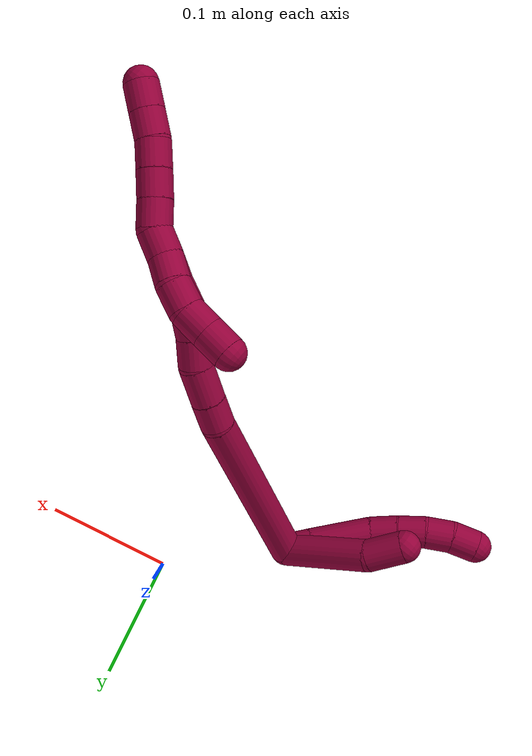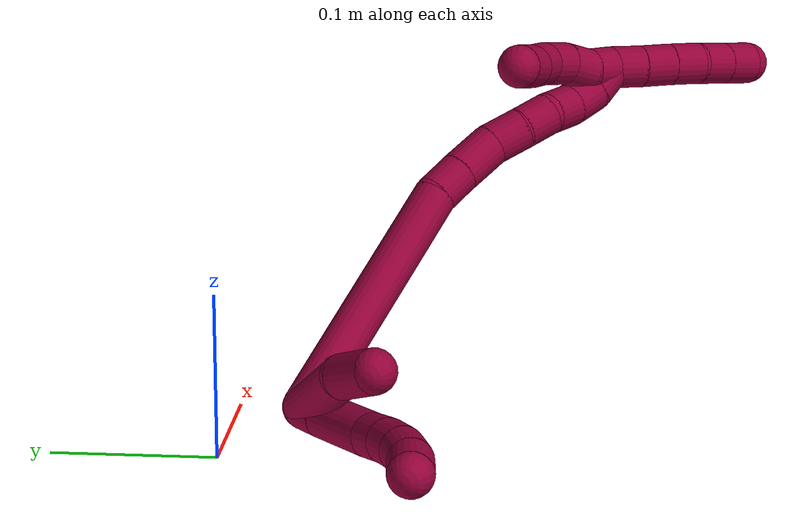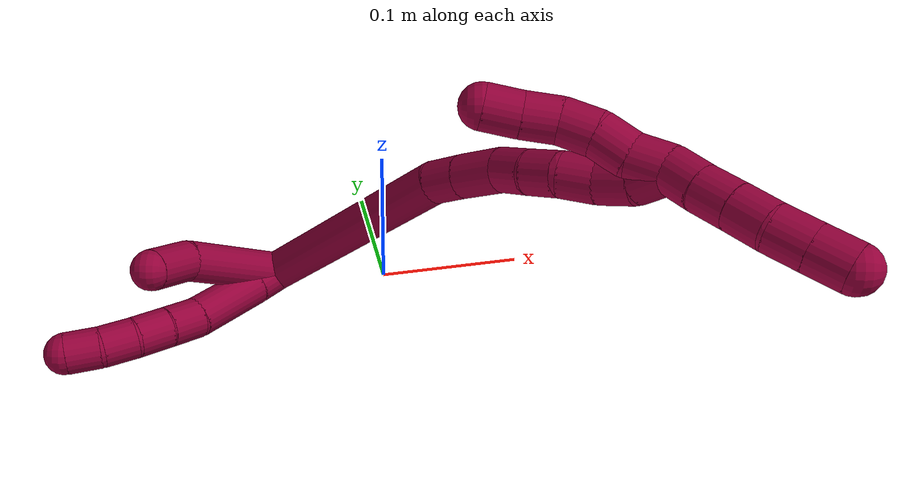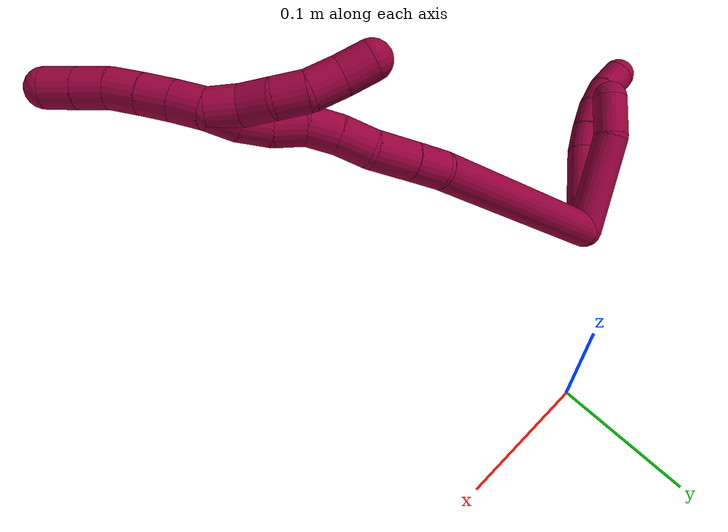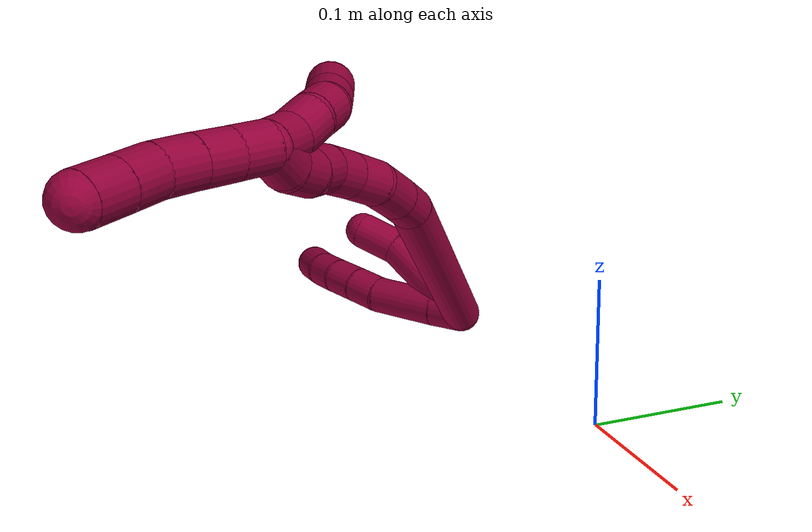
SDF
<sdf version="1.7">
 <world name="default">
  <model name="8">
   <static>0</static>
   <link name="8">
    <collision name="collision-cylinder-e_1_2_8">
     <pose>0.007186 -0.003849 0.006162 0.55836 0.779885 0.234552</pose>
     <geometry><cylinder><radius>0.0125</radius><length>0.020439</length></cylinder></geometry>
     <surface>
      <friction><ode><mu>1.16</mu><mu2>1.16</mu2><slip1>0</slip1><slip2>0</slip2></ode></friction>
      <contact><ode><kp>1e+06</kp><kd>1</kd><max_vel>0</max_vel><min_depth>0.001</min_depth></ode></contact>
     </surface>
    </collision>
    <visual name="visual-cylinder-e_1_2_8">
     <pose>0.007186 -0.003849 0.006162 0.55836 0.779885 0.234552</pose>
     <geometry><cylinder><radius>0.0125</radius><length>0.020439</length></cylinder></geometry>
     <material><ambient>0.584314 0 0.227451 1</ambient></material>
    </visual>
    <collision name="collision-cylinder-e_2_8_9">
     <pose>0.031124 -0.015835 0.02676 0.513248 0.790829 0.218189</pose>
     <geometry><cylinder><radius>0.0125</radius><length>0.047123</length></cylinder></geometry>
     <surface>
      <friction><ode><mu>1.16</mu><mu2>1.16</mu2><slip1>0</slip1><slip2>0</slip2></ode></friction>
      <contact><ode><kp>1e+06</kp><kd>1</kd><max_vel>0</max_vel><min_depth>0.001</min_depth></ode></contact>
     </surface>
    </collision>
    <visual name="visual-cylinder-e_2_8_9">
     <pose>0.031124 -0.015835 0.02676 0.513248 0.790829 0.218189</pose>
     <geometry><cylinder><radius>0.0125</radius><length>0.047123</length></cylinder></geometry>
     <material><ambient>0.584314 0 0.227451 1</ambient></material>
    </visual>
    <collision name="collision-cylinder-e_3_9_10">
     <pose>0.055005 -0.025998 0.04858 0.26785 0.749758 0.105931</pose>
     <geometry><cylinder><radius>0.0125</radius><length>0.020927</length></cylinder></geometry>
     <surface>
      <friction><ode><mu>1.16</mu><mu2>1.16</mu2><slip1>0</slip1><slip2>0</slip2></ode></friction>
      <contact><ode><kp>1e+06</kp><kd>1</kd><max_vel>0</max_vel><min_depth>0.001</min_depth></ode></contact>
     </surface>
    </collision>
    <visual name="visual-cylinder-e_3_9_10">
     <pose>0.055005 -0.025998 0.04858 0.26785 0.749758 0.105931</pose>
     <geometry><cylinder><radius>0.0125</radius><length>0.020927</length></cylinder></geometry>
     <material><ambient>0.584314 0 0.227451 1</ambient></material>
    </visual>
    <collision name="collision-cylinder-e_4_10_11">
     <pose>0.068565 -0.030273 0.064021 0.272187 0.655322 0.093028</pose>
     <geometry><cylinder><radius>0.0125</radius><length>0.0211</length></cylinder></geometry>
     <surface>
      <friction><ode><mu>1.16</mu><mu2>1.16</mu2><slip1>0</slip1><slip2>0</slip2></ode></friction>
      <contact><ode><kp>1e+06</kp><kd>1</kd><max_vel>0</max_vel><min_depth>0.001</min_depth></ode></contact>
     </surface>
    </collision>
    <visual name="visual-cylinder-e_4_10_11">
     <pose>0.068565 -0.030273 0.064021 0.272187 0.655322 0.093028</pose>
     <geometry><cylinder><radius>0.0125</radius><length>0.0211</length></cylinder></geometry>
     <material><ambient>0.584314 0 0.227451 1</ambient></material>
    </visual>
    <collision name="collision-cylinder-e_5_11_12">
     <pose>0.079752 -0.034728 0.080798 0.247732 0.486537 0.06178</pose>
     <geometry><cylinder><radius>0.0125</radius><length>0.020352</length></cylinder></geometry>
     <surface>
      <friction><ode><mu>1.16</mu><mu2>1.16</mu2><slip1>0</slip1><slip2>0</slip2></ode></friction>
      <contact><ode><kp>1e+06</kp><kd>1</kd><max_vel>0</max_vel><min_depth>0.001</min_depth></ode></contact>
     </surface>
    </collision>
    <visual name="visual-cylinder-e_5_11_12">
     <pose>0.079752 -0.034728 0.080798 0.247732 0.486537 0.06178</pose>
     <geometry><cylinder><radius>0.0125</radius><length>0.020352</length></cylinder></geometry>
     <material><ambient>0.584314 0 0.227451 1</ambient></material>
    </visual>
    <collision name="collision-cylinder-e_6_12_6">
     <pose>0.087404 -0.038481 0.098996 0.161918 0.292687 0.023917</pose>
     <geometry><cylinder><radius>0.0125</radius><length>0.020058</length></cylinder></geometry>
     <surface>
      <friction><ode><mu>1.16</mu><mu2>1.16</mu2><slip1>0</slip1><slip2>0</slip2></ode></friction>
      <contact><ode><kp>1e+06</kp><kd>1</kd><max_vel>0</max_vel><min_depth>0.001</min_depth></ode></contact>
     </surface>
    </collision>
    <visual name="visual-cylinder-e_6_12_6">
     <pose>0.087404 -0.038481 0.098996 0.161918 0.292687 0.023917</pose>
     <geometry><cylinder><radius>0.0125</radius><length>0.020058</length></cylinder></geometry>
     <material><ambient>0.584314 0 0.227451 1</ambient></material>
    </visual>
    <collision name="collision-cylinder-e_1_2_13">
     <pose>0.026115 0.005779 0.023041 -0.245754 0.832678 -0.109111</pose>
     <geometry><cylinder><radius>0.0125</radius><length>0.070605</length></cylinder></geometry>
     <surface>
      <friction><ode><mu>1.16</mu><mu2>1.16</mu2><slip1>0</slip1><slip2>0</slip2></ode></friction>
      <contact><ode><kp>1e+06</kp><kd>1</kd><max_vel>0</max_vel><min_depth>0.001</min_depth></ode></contact>
     </surface>
    </collision>
    <visual name="visual-cylinder-e_1_2_13">
     <pose>0.026115 0.005779 0.023041 -0.245754 0.832678 -0.109111</pose>
     <geometry><cylinder><radius>0.0125</radius><length>0.070605</length></cylinder></geometry>
     <material><ambient>0.584314 0 0.227451 1</ambient></material>
    </visual>
    <collision name="collision-cylinder-e_2_13_5">
     <pose>0.064832 0.009963 0.053474 0.21267 1.03038 0.12072</pose>
     <geometry><cylinder><radius>0.0125</radius><length>0.029395</length></cylinder></geometry>
     <surface>
      <friction><ode><mu>1.16</mu><mu2>1.16</mu2><slip1>0</slip1><slip2>0</slip2></ode></friction>
      <contact><ode><kp>1e+06</kp><kd>1</kd><max_vel>0</max_vel><min_depth>0.001</min_depth></ode></contact>
     </surface>
    </collision>
    <visual name="visual-cylinder-e_2_13_5">
     <pose>0.064832 0.009963 0.053474 0.21267 1.03038 0.12072</pose>
     <geometry><cylinder><radius>0.0125</radius><length>0.029395</length></cylinder></geometry>
     <material><ambient>0.584314 0 0.227451 1</ambient></material>
    </visual>
    <collision name="collision-cylinder-e_1_2_14">
     <pose>0.042749 0.031132 -0.052554 -2.6068 0.610631 -1.71047</pose>
     <geometry><cylinder><radius>0.0125</radius><length>0.149111</length></cylinder></geometry>
     <surface>
      <friction><ode><mu>1.16</mu><mu2>1.16</mu2><slip1>0</slip1><slip2>0</slip2></ode></friction>
      <contact><ode><kp>1e+06</kp><kd>1</kd><max_vel>0</max_vel><min_depth>0.001</min_depth></ode></contact>
     </surface>
    </collision>
    <visual name="visual-cylinder-e_1_2_14">
     <pose>0.042749 0.031132 -0.052554 -2.6068 0.610631 -1.71047</pose>
     <geometry><cylinder><radius>0.0125</radius><length>0.149111</length></cylinder></geometry>
     <material><ambient>0.584314 0 0.227451 1</ambient></material>
    </visual>
    <collision name="collision-cylinder-e_2_14_15">
     <pose>0.091959 0.064251 -0.113286 -2.90312 0.654657 -2.46319</pose>
     <geometry><cylinder><radius>0.0125</radius><length>0.021221</length></cylinder></geometry>
     <surface>
      <friction><ode><mu>1.16</mu><mu2>1.16</mu2><slip1>0</slip1><slip2>0</slip2></ode></friction>
      <contact><ode><kp>1e+06</kp><kd>1</kd><max_vel>0</max_vel><min_depth>0.001</min_depth></ode></contact>
     </surface>
    </collision>
    <visual name="visual-cylinder-e_2_14_15">
     <pose>0.091959 0.064251 -0.113286 -2.90312 0.654657 -2.46319</pose>
     <geometry><cylinder><radius>0.0125</radius><length>0.021221</length></cylinder></geometry>
     <material><ambient>0.584314 0 0.227451 1</ambient></material>
    </visual>
    <collision name="collision-cylinder-e_3_15_16">
     <pose>0.106918 0.068398 -0.132228 -2.94375 0.658762 -2.57646</pose>
     <geometry><cylinder><radius>0.0125</radius><length>0.027767</length></cylinder></geometry>
     <surface>
      <friction><ode><mu>1.16</mu><mu2>1.16</mu2><slip1>0</slip1><slip2>0</slip2></ode></friction>
      <contact><ode><kp>1e+06</kp><kd>1</kd><max_vel>0</max_vel><min_depth>0.001</min_depth></ode></contact>
     </surface>
    </collision>
    <visual name="visual-cylinder-e_3_15_16">
     <pose>0.106918 0.068398 -0.132228 -2.94375 0.658762 -2.57646</pose>
     <geometry><cylinder><radius>0.0125</radius><length>0.027767</length></cylinder></geometry>
     <material><ambient>0.584314 0 0.227451 1</ambient></material>
    </visual>
    <collision name="collision-cylinder-e_4_16_17">
     <pose>0.123525 0.070154 -0.150059 3.08491 0.853173 3.017</pose>
     <geometry><cylinder><radius>0.0125</radius><length>0.021527</length></cylinder></geometry>
     <surface>
      <friction><ode><mu>1.16</mu><mu2>1.16</mu2><slip1>0</slip1><slip2>0</slip2></ode></friction>
      <contact><ode><kp>1e+06</kp><kd>1</kd><max_vel>0</max_vel><min_depth>0.001</min_depth></ode></contact>
     </surface>
    </collision>
    <visual name="visual-cylinder-e_4_16_17">
     <pose>0.123525 0.070154 -0.150059 3.08491 0.853173 3.017</pose>
     <geometry><cylinder><radius>0.0125</radius><length>0.021527</length></cylinder></geometry>
     <material><ambient>0.584314 0 0.227451 1</ambient></material>
    </visual>
    <collision name="collision-cylinder-e_5_17_18">
     <pose>0.138235 0.069433 -0.164751 3.09966 0.713114 3.02912</pose>
     <geometry><cylinder><radius>0.0125</radius><length>0.020182</length></cylinder></geometry>
     <surface>
      <friction><ode><mu>1.16</mu><mu2>1.16</mu2><slip1>0</slip1><slip2>0</slip2></ode></friction>
      <contact><ode><kp>1e+06</kp><kd>1</kd><max_vel>0</max_vel><min_depth>0.001</min_depth></ode></contact>
     </surface>
    </collision>
    <visual name="visual-cylinder-e_5_17_18">
     <pose>0.138235 0.069433 -0.164751 3.09966 0.713114 3.02912</pose>
     <geometry><cylinder><radius>0.0125</radius><length>0.020182</length></cylinder></geometry>
     <material><ambient>0.584314 0 0.227451 1</ambient></material>
    </visual>
    <collision name="collision-cylinder-e_6_18_19">
     <pose>0.14873 0.067698 -0.181546 2.98838 0.397332 2.41307</pose>
     <geometry><cylinder><radius>0.0125</radius><length>0.020124</length></cylinder></geometry>
     <surface>
      <friction><ode><mu>1.16</mu><mu2>1.16</mu2><slip1>0</slip1><slip2>0</slip2></ode></friction>
      <contact><ode><kp>1e+06</kp><kd>1</kd><max_vel>0</max_vel><min_depth>0.001</min_depth></ode></contact>
     </surface>
    </collision>
    <visual name="visual-cylinder-e_6_18_19">
     <pose>0.14873 0.067698 -0.181546 2.98838 0.397332 2.41307</pose>
     <geometry><cylinder><radius>0.0125</radius><length>0.020124</length></cylinder></geometry>
     <material><ambient>0.584314 0 0.227451 1</ambient></material>
    </visual>
    <collision name="collision-cylinder-e_7_19_20">
     <pose>0.15817 0.066462 -0.199047 -3.11995 0.587205 -3.07004</pose>
     <geometry><cylinder><radius>0.0125</radius><length>0.020022</length></cylinder></geometry>
     <surface>
      <friction><ode><mu>1.16</mu><mu2>1.16</mu2><slip1>0</slip1><slip2>0</slip2></ode></friction>
      <contact><ode><kp>1e+06</kp><kd>1</kd><max_vel>0</max_vel><min_depth>0.001</min_depth></ode></contact>
     </surface>
    </collision>
    <visual name="visual-cylinder-e_7_19_20">
     <pose>0.15817 0.066462 -0.199047 -3.11995 0.587205 -3.07004</pose>
     <geometry><cylinder><radius>0.0125</radius><length>0.020022</length></cylinder></geometry>
     <material><ambient>0.584314 0 0.227451 1</ambient></material>
    </visual>
    <collision name="collision-cylinder-e_8_20_1">
     <pose>0.169861 0.069885 -0.214605 -2.71978 0.659796 -2.02404</pose>
     <geometry><cylinder><radius>0.0125</radius><length>0.020047</length></cylinder></geometry>
     <surface>
      <friction><ode><mu>1.16</mu><mu2>1.16</mu2><slip1>0</slip1><slip2>0</slip2></ode></friction>
      <contact><ode><kp>1e+06</kp><kd>1</kd><max_vel>0</max_vel><min_depth>0.001</min_depth></ode></contact>
     </surface>
    </collision>
    <visual name="visual-cylinder-e_8_20_1">
     <pose>0.169861 0.069885 -0.214605 -2.71978 0.659796 -2.02404</pose>
     <geometry><cylinder><radius>0.0125</radius><length>0.020047</length></cylinder></geometry>
     <material><ambient>0.584314 0 0.227451 1</ambient></material>
    </visual>
    <collision name="collision-cylinder-e_1_1_21">
     <pose>0.182399 0.068739 -0.228144 2.53424 0.693726 1.71314</pose>
     <geometry><cylinder><radius>0.0125</radius><length>0.02</length></cylinder></geometry>
     <surface>
      <friction><ode><mu>1.16</mu><mu2>1.16</mu2><slip1>0</slip1><slip2>0</slip2></ode></friction>
      <contact><ode><kp>1e+06</kp><kd>1</kd><max_vel>0</max_vel><min_depth>0.001</min_depth></ode></contact>
     </surface>
    </collision>
    <visual name="visual-cylinder-e_1_1_21">
     <pose>0.182399 0.068739 -0.228144 2.53424 0.693726 1.71314</pose>
     <geometry><cylinder><radius>0.0125</radius><length>0.02</length></cylinder></geometry>
     <material><ambient>0.584314 0 0.227451 1</ambient></material>
    </visual>
    <collision name="collision-cylinder-e_2_21_22">
     <pose>0.194969 0.060327 -0.241215 2.60451 0.665667 1.79695</pose>
     <geometry><cylinder><radius>0.0125</radius><length>0.02</length></cylinder></geometry>
     <surface>
      <friction><ode><mu>1.16</mu><mu2>1.16</mu2><slip1>0</slip1><slip2>0</slip2></ode></friction>
      <contact><ode><kp>1e+06</kp><kd>1</kd><max_vel>0</max_vel><min_depth>0.001</min_depth></ode></contact>
     </surface>
    </collision>
    <visual name="visual-cylinder-e_2_21_22">
     <pose>0.194969 0.060327 -0.241215 2.60451 0.665667 1.79695</pose>
     <geometry><cylinder><radius>0.0125</radius><length>0.02</length></cylinder></geometry>
     <material><ambient>0.584314 0 0.227451 1</ambient></material>
    </visual>
    <collision name="collision-cylinder-e_3_22_23">
     <pose>0.207127 0.052119 -0.254807 2.59215 0.64134 1.73423</pose>
     <geometry><cylinder><radius>0.0125</radius><length>0.02</length></cylinder></geometry>
     <surface>
      <friction><ode><mu>1.16</mu><mu2>1.16</mu2><slip1>0</slip1><slip2>0</slip2></ode></friction>
      <contact><ode><kp>1e+06</kp><kd>1</kd><max_vel>0</max_vel><min_depth>0.001</min_depth></ode></contact>
     </surface>
    </collision>
    <visual name="visual-cylinder-e_3_22_23">
     <pose>0.207127 0.052119 -0.254807 2.59215 0.64134 1.73423</pose>
     <geometry><cylinder><radius>0.0125</radius><length>0.02</length></cylinder></geometry>
     <material><ambient>0.584314 0 0.227451 1</ambient></material>
    </visual>
    <collision name="collision-cylinder-e_4_23_24">
     <pose>0.217648 0.04384 -0.269555 2.66418 0.471047 1.55687</pose>
     <geometry><cylinder><radius>0.0125</radius><length>0.02</length></cylinder></geometry>
     <surface>
      <friction><ode><mu>1.16</mu><mu2>1.16</mu2><slip1>0</slip1><slip2>0</slip2></ode></friction>
      <contact><ode><kp>1e+06</kp><kd>1</kd><max_vel>0</max_vel><min_depth>0.001</min_depth></ode></contact>
     </surface>
    </collision>
    <visual name="visual-cylinder-e_4_23_24">
     <pose>0.217648 0.04384 -0.269555 2.66418 0.471047 1.55687</pose>
     <geometry><cylinder><radius>0.0125</radius><length>0.02</length></cylinder></geometry>
     <material><ambient>0.584314 0 0.227451 1</ambient></material>
    </visual>
    <collision name="collision-cylinder-e_5_24_4">
     <pose>0.226781 0.035721 -0.285387 2.67128 0.47739 1.58631</pose>
     <geometry><cylinder><radius>0.0125</radius><length>0.02</length></cylinder></geometry>
     <surface>
      <friction><ode><mu>1.16</mu><mu2>1.16</mu2><slip1>0</slip1><slip2>0</slip2></ode></friction>
      <contact><ode><kp>1e+06</kp><kd>1</kd><max_vel>0</max_vel><min_depth>0.001</min_depth></ode></contact>
     </surface>
    </collision>
    <visual name="visual-cylinder-e_5_24_4">
     <pose>0.226781 0.035721 -0.285387 2.67128 0.47739 1.58631</pose>
     <geometry><cylinder><radius>0.0125</radius><length>0.02</length></cylinder></geometry>
     <material><ambient>0.584314 0 0.227451 1</ambient></material>
    </visual>
    <collision name="collision-cylinder-e_1_1_25">
     <pose>0.172481 0.076061 -0.212944 -0.318897 -0.360091 0.058525</pose>
     <geometry><cylinder><radius>0.0125</radius><length>0.02</length></cylinder></geometry>
     <surface>
      <friction><ode><mu>1.16</mu><mu2>1.16</mu2><slip1>0</slip1><slip2>0</slip2></ode></friction>
      <contact><ode><kp>1e+06</kp><kd>1</kd><max_vel>0</max_vel><min_depth>0.001</min_depth></ode></contact>
     </surface>
    </collision>
    <visual name="visual-cylinder-e_1_1_25">
     <pose>0.172481 0.076061 -0.212944 -0.318897 -0.360091 0.058525</pose>
     <geometry><cylinder><radius>0.0125</radius><length>0.02</length></cylinder></geometry>
     <material><ambient>0.584314 0 0.227451 1</ambient></material>
    </visual>
    <collision name="collision-cylinder-e_2_25_26">
     <pose>0.166209 0.084386 -0.196095 -0.595135 -0.278371 0.085871</pose>
     <geometry><cylinder><radius>0.0125</radius><length>0.02</length></cylinder></geometry>
     <surface>
      <friction><ode><mu>1.16</mu><mu2>1.16</mu2><slip1>0</slip1><slip2>0</slip2></ode></friction>
      <contact><ode><kp>1e+06</kp><kd>1</kd><max_vel>0</max_vel><min_depth>0.001</min_depth></ode></contact>
     </surface>
    </collision>
    <visual name="visual-cylinder-e_2_25_26">
     <pose>0.166209 0.084386 -0.196095 -0.595135 -0.278371 0.085871</pose>
     <geometry><cylinder><radius>0.0125</radius><length>0.02</length></cylinder></geometry>
     <material><ambient>0.584314 0 0.227451 1</ambient></material>
    </visual>
    <collision name="collision-cylinder-e_3_26_27">
     <pose>0.160973 0.093047 -0.179016 -0.344444 -0.251549 0.043981</pose>
     <geometry><cylinder><radius>0.0125</radius><length>0.02</length></cylinder></geometry>
     <surface>
      <friction><ode><mu>1.16</mu><mu2>1.16</mu2><slip1>0</slip1><slip2>0</slip2></ode></friction>
      <contact><ode><kp>1e+06</kp><kd>1</kd><max_vel>0</max_vel><min_depth>0.001</min_depth></ode></contact>
     </surface>
    </collision>
    <visual name="visual-cylinder-e_3_26_27">
     <pose>0.160973 0.093047 -0.179016 -0.344444 -0.251549 0.043981</pose>
     <geometry><cylinder><radius>0.0125</radius><length>0.02</length></cylinder></geometry>
     <material><ambient>0.584314 0 0.227451 1</ambient></material>
    </visual>
    <collision name="collision-cylinder-e_4_27_28">
     <pose>0.158373 0.097703 -0.159997 -0.139071 -0.01109 0.000772</pose>
     <geometry><cylinder><radius>0.0125</radius><length>0.02</length></cylinder></geometry>
     <surface>
      <friction><ode><mu>1.16</mu><mu2>1.16</mu2><slip1>0</slip1><slip2>0</slip2></ode></friction>
      <contact><ode><kp>1e+06</kp><kd>1</kd><max_vel>0</max_vel><min_depth>0.001</min_depth></ode></contact>
     </surface>
    </collision>
    <visual name="visual-cylinder-e_4_27_28">
     <pose>0.158373 0.097703 -0.159997 -0.139071 -0.01109 0.000772</pose>
     <geometry><cylinder><radius>0.0125</radius><length>0.02</length></cylinder></geometry>
     <material><ambient>0.584314 0 0.227451 1</ambient></material>
    </visual>
    <collision name="collision-cylinder-e_5_28_3">
     <pose>0.158598 0.101111 -0.140307 -0.203646 0.033661 -0.00344</pose>
     <geometry><cylinder><radius>0.0125</radius><length>0.02</length></cylinder></geometry>
     <surface>
      <friction><ode><mu>1.16</mu><mu2>1.16</mu2><slip1>0</slip1><slip2>0</slip2></ode></friction>
      <contact><ode><kp>1e+06</kp><kd>1</kd><max_vel>0</max_vel><min_depth>0.001</min_depth></ode></contact>
     </surface>
    </collision>
    <visual name="visual-cylinder-e_5_28_3">
     <pose>0.158598 0.101111 -0.140307 -0.203646 0.033661 -0.00344</pose>
     <geometry><cylinder><radius>0.0125</radius><length>0.02</length></cylinder></geometry>
     <material><ambient>0.584314 0 0.227451 1</ambient></material>
    </visual>
    <collision name="collision-sphere-3">
     <pose>0.158935 0.103132 -0.130519 0 -0 0</pose>
     <geometry><sphere><radius>0.0125</radius></sphere></geometry>
     <surface>
      <friction><ode><mu>1.16</mu><mu2>1.16</mu2><slip1>0</slip1><slip2>0</slip2></ode></friction>
      <contact><ode><kp>1e+06</kp><kd>1</kd><max_vel>0</max_vel><min_depth>0.001</min_depth></ode></contact>
     </surface>
    </collision>
    <visual name="visual-sphere-3">
     <pose>0.158935 0.103132 -0.130519 0 -0 0</pose>
     <geometry><sphere><radius>0.0125</radius></sphere></geometry>
     <material><ambient>0.584314 0 0.227451 1</ambient></material>
    </visual>
    <collision name="collision-sphere-28">
     <pose>0.158262 0.099089 -0.150094 0 -0 0</pose>
     <geometry><sphere><radius>0.0125</radius></sphere></geometry>
     <surface>
      <friction><ode><mu>1.16</mu><mu2>1.16</mu2><slip1>0</slip1><slip2>0</slip2></ode></friction>
      <contact><ode><kp>1e+06</kp><kd>1</kd><max_vel>0</max_vel><min_depth>0.001</min_depth></ode></contact>
     </surface>
    </collision>
    <visual name="visual-sphere-28">
     <pose>0.158262 0.099089 -0.150094 0 -0 0</pose>
     <geometry><sphere><radius>0.0125</radius></sphere></geometry>
     <material><ambient>0.584314 0 0.227451 1</ambient></material>
    </visual>
    <collision name="collision-sphere-27">
     <pose>0.158483 0.096317 -0.1699 0 -0 0</pose>
     <geometry><sphere><radius>0.0125</radius></sphere></geometry>
     <surface>
      <friction><ode><mu>1.16</mu><mu2>1.16</mu2><slip1>0</slip1><slip2>0</slip2></ode></friction>
      <contact><ode><kp>1e+06</kp><kd>1</kd><max_vel>0</max_vel><min_depth>0.001</min_depth></ode></contact>
     </surface>
    </collision>
    <visual name="visual-sphere-27">
     <pose>0.158483 0.096317 -0.1699 0 -0 0</pose>
     <geometry><sphere><radius>0.0125</radius></sphere></geometry>
     <material><ambient>0.584314 0 0.227451 1</ambient></material>
    </visual>
    <collision name="collision-sphere-26">
     <pose>0.163462 0.089776 -0.188133 0 -0 0</pose>
     <geometry><sphere><radius>0.0125</radius></sphere></geometry>
     <surface>
      <friction><ode><mu>1.16</mu><mu2>1.16</mu2><slip1>0</slip1><slip2>0</slip2></ode></friction>
      <contact><ode><kp>1e+06</kp><kd>1</kd><max_vel>0</max_vel><min_depth>0.001</min_depth></ode></contact>
     </surface>
    </collision>
    <visual name="visual-sphere-26">
     <pose>0.163462 0.089776 -0.188133 0 -0 0</pose>
     <geometry><sphere><radius>0.0125</radius></sphere></geometry>
     <material><ambient>0.584314 0 0.227451 1</ambient></material>
    </visual>
    <collision name="collision-sphere-25">
     <pose>0.168957 0.078995 -0.204057 0 -0 0</pose>
     <geometry><sphere><radius>0.0125</radius></sphere></geometry>
     <surface>
      <friction><ode><mu>1.16</mu><mu2>1.16</mu2><slip1>0</slip1><slip2>0</slip2></ode></friction>
      <contact><ode><kp>1e+06</kp><kd>1</kd><max_vel>0</max_vel><min_depth>0.001</min_depth></ode></contact>
     </surface>
    </collision>
    <visual name="visual-sphere-25">
     <pose>0.168957 0.078995 -0.204057 0 -0 0</pose>
     <geometry><sphere><radius>0.0125</radius></sphere></geometry>
     <material><ambient>0.584314 0 0.227451 1</ambient></material>
    </visual>
    <collision name="collision-sphere-4">
     <pose>0.231375 0.031696 -0.293305 0 -0 0</pose>
     <geometry><sphere><radius>0.0125</radius></sphere></geometry>
     <surface>
      <friction><ode><mu>1.16</mu><mu2>1.16</mu2><slip1>0</slip1><slip2>0</slip2></ode></friction>
      <contact><ode><kp>1e+06</kp><kd>1</kd><max_vel>0</max_vel><min_depth>0.001</min_depth></ode></contact>
     </surface>
    </collision>
    <visual name="visual-sphere-4">
     <pose>0.231375 0.031696 -0.293305 0 -0 0</pose>
     <geometry><sphere><radius>0.0125</radius></sphere></geometry>
     <material><ambient>0.584314 0 0.227451 1</ambient></material>
    </visual>
    <collision name="collision-sphere-24">
     <pose>0.222186 0.039746 -0.277469 0 -0 0</pose>
     <geometry><sphere><radius>0.0125</radius></sphere></geometry>
     <surface>
      <friction><ode><mu>1.16</mu><mu2>1.16</mu2><slip1>0</slip1><slip2>0</slip2></ode></friction>
      <contact><ode><kp>1e+06</kp><kd>1</kd><max_vel>0</max_vel><min_depth>0.001</min_depth></ode></contact>
     </surface>
    </collision>
    <visual name="visual-sphere-24">
     <pose>0.222186 0.039746 -0.277469 0 -0 0</pose>
     <geometry><sphere><radius>0.0125</radius></sphere></geometry>
     <material><ambient>0.584314 0 0.227451 1</ambient></material>
    </visual>
    <collision name="collision-sphere-23">
     <pose>0.21311 0.047934 -0.26164 0 -0 0</pose>
     <geometry><sphere><radius>0.0125</radius></sphere></geometry>
     <surface>
      <friction><ode><mu>1.16</mu><mu2>1.16</mu2><slip1>0</slip1><slip2>0</slip2></ode></friction>
      <contact><ode><kp>1e+06</kp><kd>1</kd><max_vel>0</max_vel><min_depth>0.001</min_depth></ode></contact>
     </surface>
    </collision>
    <visual name="visual-sphere-23">
     <pose>0.21311 0.047934 -0.26164 0 -0 0</pose>
     <geometry><sphere><radius>0.0125</radius></sphere></geometry>
     <material><ambient>0.584314 0 0.227451 1</ambient></material>
    </visual>
    <collision name="collision-sphere-22">
     <pose>0.201144 0.056303 -0.247973 0 -0 0</pose>
     <geometry><sphere><radius>0.0125</radius></sphere></geometry>
     <surface>
      <friction><ode><mu>1.16</mu><mu2>1.16</mu2><slip1>0</slip1><slip2>0</slip2></ode></friction>
      <contact><ode><kp>1e+06</kp><kd>1</kd><max_vel>0</max_vel><min_depth>0.001</min_depth></ode></contact>
     </surface>
    </collision>
    <visual name="visual-sphere-22">
     <pose>0.201144 0.056303 -0.247973 0 -0 0</pose>
     <geometry><sphere><radius>0.0125</radius></sphere></geometry>
     <material><ambient>0.584314 0 0.227451 1</ambient></material>
    </visual>
    <collision name="collision-sphere-21">
     <pose>0.188793 0.064351 -0.234458 0 -0 0</pose>
     <geometry><sphere><radius>0.0125</radius></sphere></geometry>
     <surface>
      <friction><ode><mu>1.16</mu><mu2>1.16</mu2><slip1>0</slip1><slip2>0</slip2></ode></friction>
      <contact><ode><kp>1e+06</kp><kd>1</kd><max_vel>0</max_vel><min_depth>0.001</min_depth></ode></contact>
     </surface>
    </collision>
    <visual name="visual-sphere-21">
     <pose>0.188793 0.064351 -0.234458 0 -0 0</pose>
     <geometry><sphere><radius>0.0125</radius></sphere></geometry>
     <material><ambient>0.584314 0 0.227451 1</ambient></material>
    </visual>
    <collision name="collision-sphere-1">
     <pose>0.176005 0.073127 -0.22183 0 -0 0</pose>
     <geometry><sphere><radius>0.0125</radius></sphere></geometry>
     <surface>
      <friction><ode><mu>1.16</mu><mu2>1.16</mu2><slip1>0</slip1><slip2>0</slip2></ode></friction>
      <contact><ode><kp>1e+06</kp><kd>1</kd><max_vel>0</max_vel><min_depth>0.001</min_depth></ode></contact>
     </surface>
    </collision>
    <visual name="visual-sphere-1">
     <pose>0.176005 0.073127 -0.22183 0 -0 0</pose>
     <geometry><sphere><radius>0.0125</radius></sphere></geometry>
     <material><ambient>0.584314 0 0.227451 1</ambient></material>
    </visual>
    <collision name="collision-sphere-12">
     <pose>0.08451 -0.036933 0.089519 0 -0 0</pose>
     <geometry><sphere><radius>0.0125</radius></sphere></geometry>
     <surface>
      <friction><ode><mu>1.16</mu><mu2>1.16</mu2><slip1>0</slip1><slip2>0</slip2></ode></friction>
      <contact><ode><kp>1e+06</kp><kd>1</kd><max_vel>0</max_vel><min_depth>0.001</min_depth></ode></contact>
     </surface>
    </collision>
    <visual name="visual-sphere-12">
     <pose>0.08451 -0.036933 0.089519 0 -0 0</pose>
     <geometry><sphere><radius>0.0125</radius></sphere></geometry>
     <material><ambient>0.584314 0 0.227451 1</ambient></material>
    </visual>
    <collision name="collision-sphere-11">
     <pose>0.074994 -0.032522 0.072078 0 -0 0</pose>
     <geometry><sphere><radius>0.0125</radius></sphere></geometry>
     <surface>
      <friction><ode><mu>1.16</mu><mu2>1.16</mu2><slip1>0</slip1><slip2>0</slip2></ode></friction>
      <contact><ode><kp>1e+06</kp><kd>1</kd><max_vel>0</max_vel><min_depth>0.001</min_depth></ode></contact>
     </surface>
    </collision>
    <visual name="visual-sphere-11">
     <pose>0.074994 -0.032522 0.072078 0 -0 0</pose>
     <geometry><sphere><radius>0.0125</radius></sphere></geometry>
     <material><ambient>0.584314 0 0.227451 1</ambient></material>
    </visual>
    <collision name="collision-sphere-10">
     <pose>0.062136 -0.028024 0.055964 0 -0 0</pose>
     <geometry><sphere><radius>0.0125</radius></sphere></geometry>
     <surface>
      <friction><ode><mu>1.16</mu><mu2>1.16</mu2><slip1>0</slip1><slip2>0</slip2></ode></friction>
      <contact><ode><kp>1e+06</kp><kd>1</kd><max_vel>0</max_vel><min_depth>0.001</min_depth></ode></contact>
     </surface>
    </collision>
    <visual name="visual-sphere-10">
     <pose>0.062136 -0.028024 0.055964 0 -0 0</pose>
     <geometry><sphere><radius>0.0125</radius></sphere></geometry>
     <material><ambient>0.584314 0 0.227451 1</ambient></material>
    </visual>
    <collision name="collision-sphere-9">
     <pose>0.047874 -0.023971 0.041195 0 -0 0</pose>
     <geometry><sphere><radius>0.0125</radius></sphere></geometry>
     <surface>
      <friction><ode><mu>1.16</mu><mu2>1.16</mu2><slip1>0</slip1><slip2>0</slip2></ode></friction>
      <contact><ode><kp>1e+06</kp><kd>1</kd><max_vel>0</max_vel><min_depth>0.001</min_depth></ode></contact>
     </surface>
    </collision>
    <visual name="visual-sphere-9">
     <pose>0.047874 -0.023971 0.041195 0 -0 0</pose>
     <geometry><sphere><radius>0.0125</radius></sphere></geometry>
     <material><ambient>0.584314 0 0.227451 1</ambient></material>
    </visual>
    <collision name="collision-sphere-2">
     <geometry><sphere><radius>0.0125</radius></sphere></geometry>
     <surface>
      <friction><ode><mu>1.16</mu><mu2>1.16</mu2><slip1>0</slip1><slip2>0</slip2></ode></friction>
      <contact><ode><kp>1e+06</kp><kd>1</kd><max_vel>0</max_vel><min_depth>0.001</min_depth></ode></contact>
     </surface>
    </collision>
    <visual name="visual-sphere-2">
     <geometry><sphere><radius>0.0125</radius></sphere></geometry>
     <material><ambient>0.584314 0 0.227451 1</ambient></material>
    </visual>
    <collision name="collision-sphere-19">
     <pose>0.152624 0.066282 -0.190715 0 -0 0</pose>
     <geometry><sphere><radius>0.0125</radius></sphere></geometry>
     <surface>
      <friction><ode><mu>1.16</mu><mu2>1.16</mu2><slip1>0</slip1><slip2>0</slip2></ode></friction>
      <contact><ode><kp>1e+06</kp><kd>1</kd><max_vel>0</max_vel><min_depth>0.001</min_depth></ode></contact>
     </surface>
    </collision>
    <visual name="visual-sphere-19">
     <pose>0.152624 0.066282 -0.190715 0 -0 0</pose>
     <geometry><sphere><radius>0.0125</radius></sphere></geometry>
     <material><ambient>0.584314 0 0.227451 1</ambient></material>
    </visual>
    <collision name="collision-sphere-8">
     <pose>0.014373 -0.007699 0.012325 0 -0 0</pose>
     <geometry><sphere><radius>0.0125</radius></sphere></geometry>
     <surface>
      <friction><ode><mu>1.16</mu><mu2>1.16</mu2><slip1>0</slip1><slip2>0</slip2></ode></friction>
      <contact><ode><kp>1e+06</kp><kd>1</kd><max_vel>0</max_vel><min_depth>0.001</min_depth></ode></contact>
     </surface>
    </collision>
    <visual name="visual-sphere-8">
     <pose>0.014373 -0.007699 0.012325 0 -0 0</pose>
     <geometry><sphere><radius>0.0125</radius></sphere></geometry>
     <material><ambient>0.584314 0 0.227451 1</ambient></material>
    </visual>
    <collision name="collision-sphere-6">
     <pose>0.090298 -0.040029 0.108473 0 -0 0</pose>
     <geometry><sphere><radius>0.0125</radius></sphere></geometry>
     <surface>
      <friction><ode><mu>1.16</mu><mu2>1.16</mu2><slip1>0</slip1><slip2>0</slip2></ode></friction>
      <contact><ode><kp>1e+06</kp><kd>1</kd><max_vel>0</max_vel><min_depth>0.001</min_depth></ode></contact>
     </surface>
    </collision>
    <visual name="visual-sphere-6">
     <pose>0.090298 -0.040029 0.108473 0 -0 0</pose>
     <geometry><sphere><radius>0.0125</radius></sphere></geometry>
     <material><ambient>0.584314 0 0.227451 1</ambient></material>
    </visual>
    <collision name="collision-sphere-13">
     <pose>0.052229 0.011559 0.046083 0 -0 0</pose>
     <geometry><sphere><radius>0.0125</radius></sphere></geometry>
     <surface>
      <friction><ode><mu>1.16</mu><mu2>1.16</mu2><slip1>0</slip1><slip2>0</slip2></ode></friction>
      <contact><ode><kp>1e+06</kp><kd>1</kd><max_vel>0</max_vel><min_depth>0.001</min_depth></ode></contact>
     </surface>
    </collision>
    <visual name="visual-sphere-13">
     <pose>0.052229 0.011559 0.046083 0 -0 0</pose>
     <geometry><sphere><radius>0.0125</radius></sphere></geometry>
     <material><ambient>0.584314 0 0.227451 1</ambient></material>
    </visual>
    <collision name="collision-sphere-5">
     <pose>0.077435 0.008366 0.060865 0 -0 0</pose>
     <geometry><sphere><radius>0.0125</radius></sphere></geometry>
     <surface>
      <friction><ode><mu>1.16</mu><mu2>1.16</mu2><slip1>0</slip1><slip2>0</slip2></ode></friction>
      <contact><ode><kp>1e+06</kp><kd>1</kd><max_vel>0</max_vel><min_depth>0.001</min_depth></ode></contact>
     </surface>
    </collision>
    <visual name="visual-sphere-5">
     <pose>0.077435 0.008366 0.060865 0 -0 0</pose>
     <geometry><sphere><radius>0.0125</radius></sphere></geometry>
     <material><ambient>0.584314 0 0.227451 1</ambient></material>
    </visual>
    <collision name="collision-sphere-14">
     <pose>0.085498 0.062263 -0.105107 0 -0 0</pose>
     <geometry><sphere><radius>0.0125</radius></sphere></geometry>
     <surface>
      <friction><ode><mu>1.16</mu><mu2>1.16</mu2><slip1>0</slip1><slip2>0</slip2></ode></friction>
      <contact><ode><kp>1e+06</kp><kd>1</kd><max_vel>0</max_vel><min_depth>0.001</min_depth></ode></contact>
     </surface>
    </collision>
    <visual name="visual-sphere-14">
     <pose>0.085498 0.062263 -0.105107 0 -0 0</pose>
     <geometry><sphere><radius>0.0125</radius></sphere></geometry>
     <material><ambient>0.584314 0 0.227451 1</ambient></material>
    </visual>
    <collision name="collision-sphere-15">
     <pose>0.098419 0.06624 -0.121464 0 -0 0</pose>
     <geometry><sphere><radius>0.0125</radius></sphere></geometry>
     <surface>
      <friction><ode><mu>1.16</mu><mu2>1.16</mu2><slip1>0</slip1><slip2>0</slip2></ode></friction>
      <contact><ode><kp>1e+06</kp><kd>1</kd><max_vel>0</max_vel><min_depth>0.001</min_depth></ode></contact>
     </surface>
    </collision>
    <visual name="visual-sphere-15">
     <pose>0.098419 0.06624 -0.121464 0 -0 0</pose>
     <geometry><sphere><radius>0.0125</radius></sphere></geometry>
     <material><ambient>0.584314 0 0.227451 1</ambient></material>
    </visual>
    <collision name="collision-sphere-16">
     <pose>0.115416 0.070555 -0.142992 0 -0 0</pose>
     <geometry><sphere><radius>0.0125</radius></sphere></geometry>
     <surface>
      <friction><ode><mu>1.16</mu><mu2>1.16</mu2><slip1>0</slip1><slip2>0</slip2></ode></friction>
      <contact><ode><kp>1e+06</kp><kd>1</kd><max_vel>0</max_vel><min_depth>0.001</min_depth></ode></contact>
     </surface>
    </collision>
    <visual name="visual-sphere-16">
     <pose>0.115416 0.070555 -0.142992 0 -0 0</pose>
     <geometry><sphere><radius>0.0125</radius></sphere></geometry>
     <material><ambient>0.584314 0 0.227451 1</ambient></material>
    </visual>
    <collision name="collision-sphere-17">
     <pose>0.131634 0.069753 -0.157126 0 -0 0</pose>
     <geometry><sphere><radius>0.0125</radius></sphere></geometry>
     <surface>
      <friction><ode><mu>1.16</mu><mu2>1.16</mu2><slip1>0</slip1><slip2>0</slip2></ode></friction>
      <contact><ode><kp>1e+06</kp><kd>1</kd><max_vel>0</max_vel><min_depth>0.001</min_depth></ode></contact>
     </surface>
    </collision>
    <visual name="visual-sphere-17">
     <pose>0.131634 0.069753 -0.157126 0 -0 0</pose>
     <geometry><sphere><radius>0.0125</radius></sphere></geometry>
     <material><ambient>0.584314 0 0.227451 1</ambient></material>
    </visual>
    <collision name="collision-sphere-18">
     <pose>0.144837 0.069114 -0.172377 0 -0 0</pose>
     <geometry><sphere><radius>0.0125</radius></sphere></geometry>
     <surface>
      <friction><ode><mu>1.16</mu><mu2>1.16</mu2><slip1>0</slip1><slip2>0</slip2></ode></friction>
      <contact><ode><kp>1e+06</kp><kd>1</kd><max_vel>0</max_vel><min_depth>0.001</min_depth></ode></contact>
     </surface>
    </collision>
    <visual name="visual-sphere-18">
     <pose>0.144837 0.069114 -0.172377 0 -0 0</pose>
     <geometry><sphere><radius>0.0125</radius></sphere></geometry>
     <material><ambient>0.584314 0 0.227451 1</ambient></material>
    </visual>
    <collision name="collision-sphere-20">
     <pose>0.163717 0.066642 -0.20738 0 -0 0</pose>
     <geometry><sphere><radius>0.0125</radius></sphere></geometry>
     <surface>
      <friction><ode><mu>1.16</mu><mu2>1.16</mu2><slip1>0</slip1><slip2>0</slip2></ode></friction>
      <contact><ode><kp>1e+06</kp><kd>1</kd><max_vel>0</max_vel><min_depth>0.001</min_depth></ode></contact>
     </surface>
    </collision>
    <visual name="visual-sphere-20">
     <pose>0.163717 0.066642 -0.20738 0 -0 0</pose>
     <geometry><sphere><radius>0.0125</radius></sphere></geometry>
     <material><ambient>0.584314 0 0.227451 1</ambient></material>
    </visual>
    <inertial>
     <pose>0.099409 0.035181 -0.086899 0 -0 0</pose>
     <mass>0.75</mass>
     <inertia>
      <ixx>-0.000192</ixx>
      <ixy>0</ixy>
      <ixz>0</ixz>
      <iyy>-3.5e-05</iyy>
      <iyz>0</iyz>
      <izz>-0.00033</izz>
     </inertia>
    </inertial>
   </link>
   <pose>-0.08226 -0.062211 0.061025 1.59247 -0.536453 -1.82741</pose>
  </model>
 </world>
</sdf>
